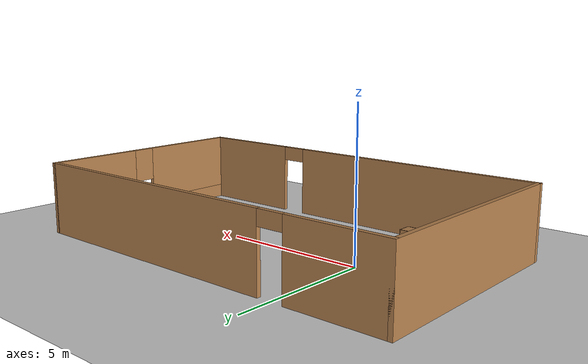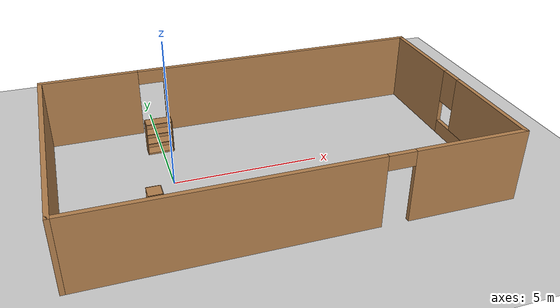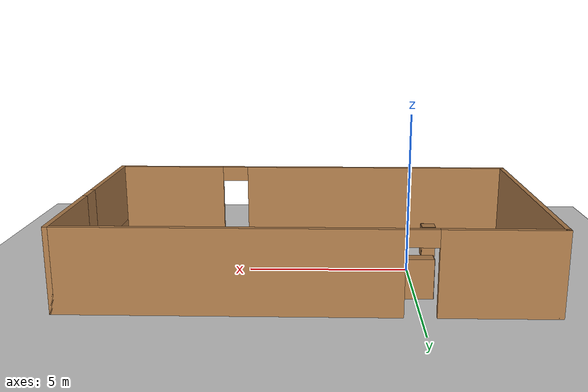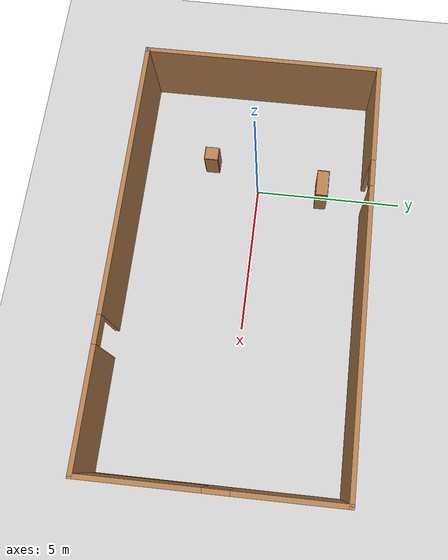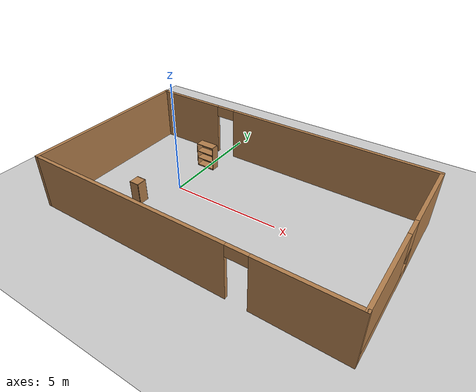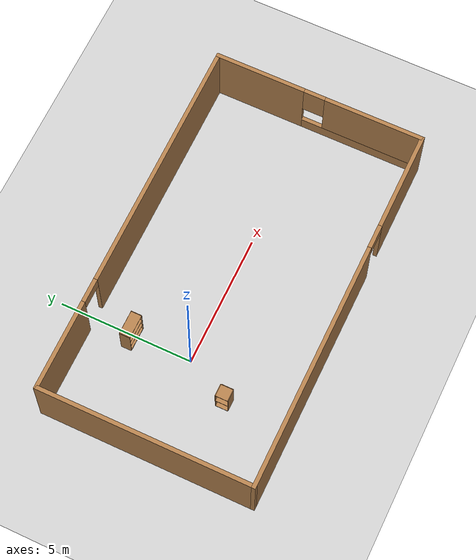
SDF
<sdf version="1.7">
 <world name="default">
  <light name="sun" type="directional">
   <pose>0 0 10 0 -0 0</pose>
   <diffuse>0.8 0.8 0.8 1</diffuse>
   <specular>0.2 0.2 0.2 1</specular>
   <attenuation>
    <range>1000</range>
    <constant>0.9</constant>
    <linear>0.01</linear>
    <quadratic>0.001</quadratic>
   </attenuation>
   <direction>-0.5 0.1 -0.9</direction>
   <spot><inner_angle>0</inner_angle><outer_angle>0</outer_angle><falloff>0</falloff></spot>
  </light>
  <model name="ground_plane">
   <static>1</static>
   <link name="link">
    <collision name="collision">
     <geometry><plane><normal>0 0 1</normal><size>100 100</size></plane></geometry>
     <surface><friction><ode><mu>100</mu><mu2>50</mu2></ode></friction></surface>
    </collision>
    <visual name="visual">
     <cast_shadows>0</cast_shadows>
     <geometry><plane><normal>0 0 1</normal><size>100 100</size></plane></geometry>
     <material>
      <script><uri>file://media/materials/scripts/gazebo.material</uri><name>Gazebo/Grey</name></script>
     </material>
    </visual>
   </link>
  </model>
  <gravity>0 0 -9.8</gravity>
  <magnetic_field>6e-06 2.3e-05 -4.2e-05</magnetic_field>
  <atmosphere type="adiabatic"/>
  <physics type="ode">
   <max_step_size>0.001</max_step_size>
   <real_time_factor>1</real_time_factor>
   <real_time_update_rate>1000</real_time_update_rate>
  </physics>
  <scene><ambient>0.4 0.4 0.4 1</ambient><background>0.7 0.7 0.7 1</background><shadows>1</shadows></scene>
  <audio><device>default</device></audio>
  <spherical_coordinates>
   <surface_model>EARTH_WGS84</surface_model>
   <latitude_deg>0</latitude_deg>
   <longitude_deg>0</longitude_deg>
   <elevation>0</elevation>
   <heading_deg>0</heading_deg>
  </spherical_coordinates>
  <model name="test_world">
   <pose>3.145 -0.195 0 0 -0 0</pose>
   <link name="Wall_2">
    <collision name="Wall_2_Collision">
     <geometry><box><size>8 0.15 2.5</size></box></geometry>
     <pose>0 0 1.25 0 -0 0</pose>
    </collision>
    <visual name="Wall_2_Visual">
     <pose>0 0 1.25 0 -0 0</pose>
     <geometry><box><size>8 0.15 2.5</size></box></geometry>
     <material>
      <script><uri>file://media/materials/scripts/gazebo.material</uri><name>Gazebo/Wood</name></script>
      <ambient>1 1 1 1</ambient>
     </material>
     <meta><layer>0</layer></meta>
    </visual>
    <pose>-6.925 0 0 0 -0 1.5708</pose>
   </link>
   <link name="Wall_3">
    <pose>0 3.925 0 0 -0 0</pose>
    <visual name="Wall_3_Visual_0">
     <pose>-5.28922 0 1.25 0 -0 0</pose>
     <geometry><box><size>3.42155 0.15 2.5</size></box></geometry>
     <material>
      <script><uri>file://media/materials/scripts/gazebo.material</uri><name>Gazebo/Wood</name></script>
      <ambient>1 1 1 1</ambient>
     </material>
     <meta><layer>0</layer></meta>
    </visual>
    <collision name="Wall_3_Collision_0">
     <geometry><box><size>3.42155 0.15 2.5</size></box></geometry>
     <pose>-5.28922 0 1.25 0 -0 0</pose>
    </collision>
    <visual name="Wall_3_Visual_1">
     <pose>2.16078 0 1.25 0 -0 0</pose>
     <geometry><box><size>9.67845 0.15 2.5</size></box></geometry>
     <material>
      <script><uri>file://media/materials/scripts/gazebo.material</uri><name>Gazebo/Wood</name></script>
      <ambient>1 1 1 1</ambient>
     </material>
     <meta><layer>0</layer></meta>
    </visual>
    <collision name="Wall_3_Collision_1">
     <geometry><box><size>9.67845 0.15 2.5</size></box></geometry>
     <pose>2.16078 0 1.25 0 -0 0</pose>
    </collision>
    <visual name="Wall_3_Visual_2">
     <pose>-3.12845 0 2.25 0 -0 0</pose>
     <geometry><box><size>0.9 0.15 0.5</size></box></geometry>
     <material>
      <script><uri>file://media/materials/scripts/gazebo.material</uri><name>Gazebo/Wood</name></script>
      <ambient>1 1 1 1</ambient>
     </material>
     <meta><layer>0</layer></meta>
    </visual>
    <collision name="Wall_3_Collision_2">
     <geometry><box><size>0.9 0.15 0.5</size></box></geometry>
     <pose>-3.12845 0 2.25 0 -0 0</pose>
    </collision>
   </link>
   <link name="Wall_4">
    <pose>6.925 0 0 0 -0 -1.5708</pose>
    <visual name="Wall_4_Visual_0">
     <pose>-2.28218 0 1.25 0 -0 0</pose>
     <geometry><box><size>3.43564 0.15 2.5</size></box></geometry>
     <material>
      <script><uri>file://media/materials/scripts/gazebo.material</uri><name>Gazebo/Wood</name></script>
      <ambient>1 1 1 1</ambient>
     </material>
     <meta><layer>0</layer></meta>
    </visual>
    <collision name="Wall_4_Collision_0">
     <geometry><box><size>3.43564 0.15 2.5</size></box></geometry>
     <pose>-2.28218 0 1.25 0 -0 0</pose>
    </collision>
    <visual name="Wall_4_Visual_1">
     <pose>1.71782 0 0.25 0 -0 0</pose>
     <geometry><box><size>4.56436 0.15 0.5</size></box></geometry>
     <material>
      <script><uri>file://media/materials/scripts/gazebo.material</uri><name>Gazebo/Wood</name></script>
      <ambient>1 1 1 1</ambient>
     </material>
     <meta><layer>0</layer></meta>
    </visual>
    <collision name="Wall_4_Collision_1">
     <geometry><box><size>4.56436 0.15 0.5</size></box></geometry>
     <pose>1.71782 0 0.25 0 -0 0</pose>
    </collision>
    <visual name="Wall_4_Visual_2">
     <pose>2.11782 0 1.5 0 -0 0</pose>
     <geometry><box><size>3.76436 0.15 2</size></box></geometry>
     <material>
      <script><uri>file://media/materials/scripts/gazebo.material</uri><name>Gazebo/Wood</name></script>
      <ambient>1 1 1 1</ambient>
     </material>
     <meta><layer>0</layer></meta>
    </visual>
    <collision name="Wall_4_Collision_2">
     <geometry><box><size>3.76436 0.15 2</size></box></geometry>
     <pose>2.11782 0 1.5 0 -0 0</pose>
    </collision>
    <visual name="Wall_4_Visual_3">
     <pose>-0.164357 0 1.9 0 -0 0</pose>
     <geometry><box><size>0.8 0.15 1.2</size></box></geometry>
     <material>
      <script><uri>file://media/materials/scripts/gazebo.material</uri><name>Gazebo/Wood</name></script>
      <ambient>1 1 1 1</ambient>
     </material>
     <meta><layer>0</layer></meta>
    </visual>
    <collision name="Wall_4_Collision_3">
     <geometry><box><size>0.8 0.15 1.2</size></box></geometry>
     <pose>-0.164357 0 1.9 0 -0 0</pose>
    </collision>
   </link>
   <link name="Wall_5">
    <pose>0 -3.925 0 0 -0 3.14159</pose>
    <visual name="Wall_5_Visual_0">
     <pose>-5.11273 0 1.25 0 -0 0</pose>
     <geometry><box><size>3.77453 0.15 2.5</size></box></geometry>
     <material>
      <script><uri>file://media/materials/scripts/gazebo.material</uri><name>Gazebo/Wood</name></script>
      <ambient>1 1 1 1</ambient>
     </material>
     <meta><layer>0</layer></meta>
    </visual>
    <collision name="Wall_5_Collision_0">
     <geometry><box><size>3.77453 0.15 2.5</size></box></geometry>
     <pose>-5.11273 0 1.25 0 -0 0</pose>
    </collision>
    <visual name="Wall_5_Visual_1">
     <pose>2.33727 0 1.25 0 -0 0</pose>
     <geometry><box><size>9.32547 0.15 2.5</size></box></geometry>
     <material>
      <script><uri>file://media/materials/scripts/gazebo.material</uri><name>Gazebo/Wood</name></script>
      <ambient>1 1 1 1</ambient>
     </material>
     <meta><layer>0</layer></meta>
    </visual>
    <collision name="Wall_5_Collision_1">
     <geometry><box><size>9.32547 0.15 2.5</size></box></geometry>
     <pose>2.33727 0 1.25 0 -0 0</pose>
    </collision>
    <visual name="Wall_5_Visual_2">
     <pose>-2.77547 0 2.25 0 -0 0</pose>
     <geometry><box><size>0.9 0.15 0.5</size></box></geometry>
     <material>
      <script><uri>file://media/materials/scripts/gazebo.material</uri><name>Gazebo/Wood</name></script>
      <ambient>1 1 1 1</ambient>
     </material>
     <meta><layer>0</layer></meta>
    </visual>
    <collision name="Wall_5_Collision_2">
     <geometry><box><size>0.9 0.15 0.5</size></box></geometry>
     <pose>-2.77547 0 2.25 0 -0 0</pose>
    </collision>
   </link>
   <static>1</static>
  </model>
  <model name="bookshelf">
   <static>1</static>
   <link name="link">
    <inertial><mass>1</mass></inertial>
    <collision name="back">
     <pose>0 0.005 0.6 0 -0 0</pose>
     <geometry><box><size>0.9 0.01 1.2</size></box></geometry>
    </collision>
    <visual name="visual1">
     <pose>0 0.005 0.6 0 -0 0</pose>
     <geometry><box><size>0.9 0.01 1.2</size></box></geometry>
     <material>
      <script><uri>file://media/materials/scripts/gazebo.material</uri><name>Gazebo/Wood</name></script>
     </material>
    </visual>
    <collision name="left_side">
     <pose>0.45 -0.195 0.6 0 -0 0</pose>
     <geometry><box><size>0.02 0.4 1.2</size></box></geometry>
    </collision>
    <visual name="visual2">
     <pose>0.45 -0.195 0.6 0 -0 0</pose>
     <geometry><box><size>0.02 0.4 1.2</size></box></geometry>
     <material>
      <script><uri>file://media/materials/scripts/gazebo.material</uri><name>Gazebo/Wood</name></script>
     </material>
    </visual>
    <collision name="right_side">
     <pose>-0.45 -0.195 0.6 0 -0 0</pose>
     <geometry><box><size>0.02 0.4 1.2</size></box></geometry>
    </collision>
    <visual name="visual3">
     <pose>-0.45 -0.195 0.6 0 -0 0</pose>
     <geometry><box><size>0.02 0.4 1.2</size></box></geometry>
     <material>
      <script><uri>file://media/materials/scripts/gazebo.material</uri><name>Gazebo/Wood</name></script>
     </material>
    </visual>
    <collision name="bottom">
     <pose>0 -0.195 0.03 0 -0 0</pose>
     <geometry><box><size>0.88 0.4 0.06</size></box></geometry>
    </collision>
    <visual name="visual4">
     <pose>0 -0.195 0.03 0 -0 0</pose>
     <geometry><box><size>0.88 0.4 0.06</size></box></geometry>
     <material>
      <script><uri>file://media/materials/scripts/gazebo.material</uri><name>Gazebo/Wood</name></script>
     </material>
    </visual>
    <collision name="top">
     <pose>0 -0.195 1.19 0 -0 0</pose>
     <geometry><box><size>0.88 0.4 0.02</size></box></geometry>
    </collision>
    <visual name="visual5">
     <pose>0 -0.195 1.19 0 -0 0</pose>
     <geometry><box><size>0.88 0.4 0.02</size></box></geometry>
     <material>
      <script><uri>file://media/materials/scripts/gazebo.material</uri><name>Gazebo/Wood</name></script>
     </material>
    </visual>
    <collision name="low_shelf">
     <pose>0 -0.195 0.43 0 -0 0</pose>
     <geometry><box><size>0.88 0.4 0.02</size></box></geometry>
    </collision>
    <visual name="visual6">
     <pose>0 -0.195 0.43 0 -0 0</pose>
     <geometry><box><size>0.88 0.4 0.02</size></box></geometry>
     <material>
      <script><uri>file://media/materials/scripts/gazebo.material</uri><name>Gazebo/Wood</name></script>
     </material>
    </visual>
    <collision name="high_shelf">
     <pose>0 -0.195 0.8 0 -0 0</pose>
     <geometry><box><size>0.88 0.4 0.02</size></box></geometry>
    </collision>
    <visual name="visual7">
     <pose>0 -0.195 0.8 0 -0 0</pose>
     <geometry><box><size>0.88 0.4 0.02</size></box></geometry>
     <material>
      <script><uri>file://media/materials/scripts/gazebo.material</uri><name>Gazebo/Wood</name></script>
     </material>
    </visual>
   </link>
   <pose>-0.060582 2.42417 0 0 -0 0</pose>
  </model>
  <model name="cabinet">
   <static>1</static>
   <link name="cabinet_bottom_plate">
    <inertial>
     <pose>0 0 -1 0 -0 0</pose>
     <inertia><ixx>2.05</ixx><ixy>0</ixy><ixz>0</ixz><iyy>2.05</iyy><iyz>0</iyz><izz>2.05</izz></inertia>
     <mass>25</mass>
    </inertial>
    <collision name="cabinet_bottom_plate_geom">
     <pose>0 0 0.01 0 -0 0</pose>
     <geometry><box><size>0.45 0.45 0.02</size></box></geometry>
    </collision>
    <visual name="cabinet_bottom_plate_geom_visual">
     <pose>0 0 0.01 0 -0 0</pose>
     <geometry><box><size>0.45 0.45 0.02</size></box></geometry>
     <material>
      <script><uri>file://media/materials/scripts/gazebo.material</uri><name>Gazebo/Wood</name></script>
     </material>
    </visual>
    <collision name="cabinet_bottom_plate_geom_cabinet_back_plate">
     <pose>0.235 0 0.51 0 -0 0</pose>
     <geometry><box><size>0.02 0.45 1.02</size></box></geometry>
    </collision>
    <visual name="cabinet_bottom_plate_geom_cabinet_back_plate_visual">
     <pose>0.235 0 0.51 0 -0 0</pose>
     <geometry><box><size>0.02 0.45 1.02</size></box></geometry>
     <material>
      <script><uri>file://media/materials/scripts/gazebo.material</uri><name>Gazebo/Wood</name></script>
     </material>
    </visual>
    <collision name="cabinet_bottom_plate_geom_cabinet_left_plate">
     <pose>0 0.235 0.51 0 -0 0</pose>
     <geometry><box><size>0.45 0.02 1.02</size></box></geometry>
    </collision>
    <visual name="cabinet_bottom_plate_geom_cabinet_left_plate_visual">
     <pose>0 0.235 0.51 0 -0 0</pose>
     <geometry><box><size>0.45 0.02 1.02</size></box></geometry>
     <material>
      <script><uri>file://media/materials/scripts/gazebo.material</uri><name>Gazebo/Wood</name></script>
     </material>
    </visual>
    <collision name="cabinet_bottom_plate_geom_cabinet_middle_plate">
     <pose>0 0 0.51 0 -0 0</pose>
     <geometry><box><size>0.45 0.45 0.02</size></box></geometry>
    </collision>
    <visual name="cabinet_bottom_plate_geom_cabinet_middle_plate_visual">
     <pose>0 0 0.51 0 -0 0</pose>
     <geometry><box><size>0.45 0.45 0.02</size></box></geometry>
     <material>
      <script><uri>file://media/materials/scripts/gazebo.material</uri><name>Gazebo/Wood</name></script>
     </material>
    </visual>
    <collision name="cabinet_bottom_plate_geom_cabinet_right_plate">
     <pose>0 -0.235 0.51 0 -0 0</pose>
     <geometry><box><size>0.45 0.02 1.02</size></box></geometry>
    </collision>
    <visual name="cabinet_bottom_plate_geom_cabinet_right_plate_visual">
     <pose>0 -0.235 0.51 0 -0 0</pose>
     <geometry><box><size>0.45 0.02 1.02</size></box></geometry>
     <material>
      <script><uri>file://media/materials/scripts/gazebo.material</uri><name>Gazebo/Wood</name></script>
     </material>
    </visual>
    <collision name="cabinet_bottom_plate_geom_cabinet_top_plate">
     <pose>0 0 1.01 0 -0 0</pose>
     <geometry><box><size>0.45 0.45 0.02</size></box></geometry>
    </collision>
    <visual name="cabinet_bottom_plate_geom_cabinet_top_plate_visual">
     <pose>0 0 1.01 0 -0 0</pose>
     <geometry><box><size>0.45 0.45 0.02</size></box></geometry>
     <material>
      <script><uri>file://media/materials/scripts/gazebo.material</uri><name>Gazebo/Wood</name></script>
     </material>
    </visual>
   </link>
   <pose>-0.864947 -1.67603 0 0 -0 0</pose>
  </model>
 </world>
</sdf>
